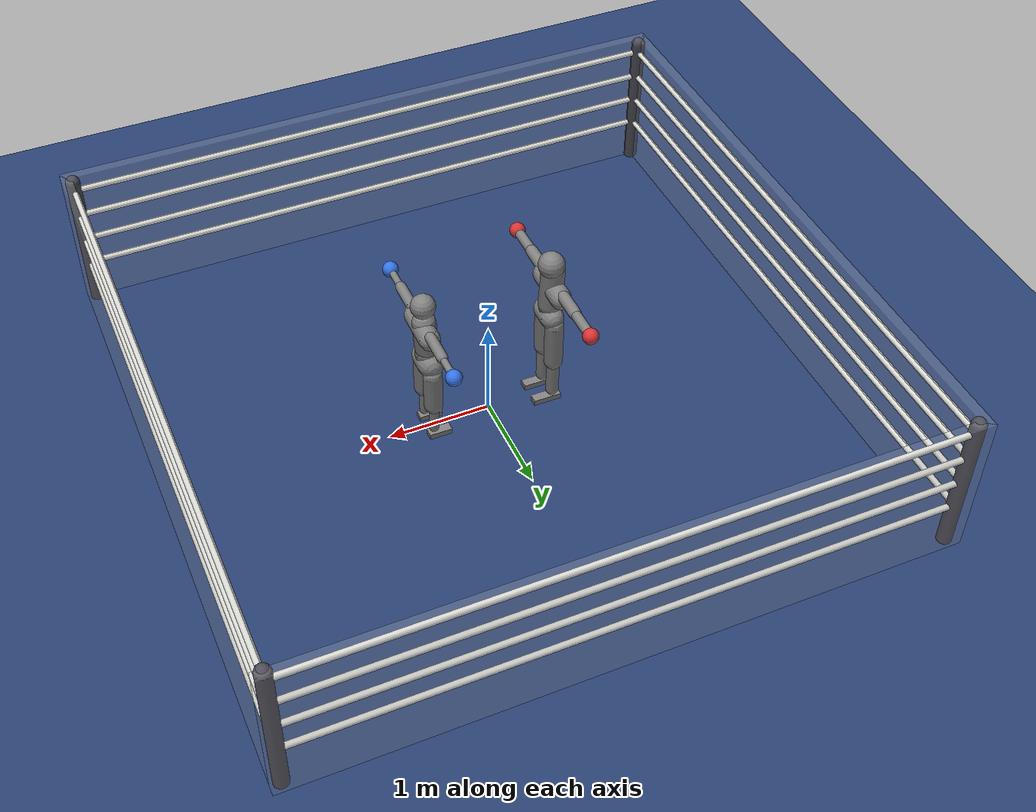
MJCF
<mujoco model="trump_vs_lilmatt_spar">
  <compiler angle="degree" inertiafromgeom="true" autolimits="true"/>
  <option timestep="0.005" iterations="10" ls_iterations="10" integrator="implicitfast">
    <flag eulerdamp="disable"/>
  </option>
  <default>
    <geom contype="1" conaffinity="1" condim="3" friction="1.0 0.005 0.0001" density="1000" margin="0"/>
    <joint limited="true"/>
    <position ctrllimited="true"/>
  </default>
  <asset>
    <texture name="grid" type="2d" builtin="checker" rgb1=".18 .28 .48" rgb2=".14 .22 .40" width="300" height="300"/>
    <material name="grid" texture="grid" texrepeat="6 6" reflectance="0"/>
  </asset>
  <worldbody>
    <light pos="0 0 5" dir="0 0 -1" directional="true"/>
    <geom name="floor" type="plane" contype="3" conaffinity="3" size="0 0 0.05" material="grid" friction="1.0 0.005 0.0001"/>
    <geom name="rope_n" type="box" pos="0.0000 3.1000 0.7500" size="3.1500 0.0500 0.7500" rgba="0.8 0.8 0.8 0.15"/>
    <geom name="rope_s" type="box" pos="0.0000 -3.1000 0.7500" size="3.1500 0.0500 0.7500" rgba="0.8 0.8 0.8 0.15"/>
    <geom name="rope_e" type="box" pos="3.1000 0.0000 0.7500" size="0.0500 3.1500 0.7500" rgba="0.8 0.8 0.8 0.15"/>
    <geom name="rope_w" type="box" pos="-3.1000 0.0000 0.7500" size="0.0500 3.1500 0.7500" rgba="0.8 0.8 0.8 0.15"/>
    <body name="a_pelvis" pos="-0.6000 0.0000 0.9982" quat="1.00000 0 0 0.00000">
      <freejoint name="a_root"/>
      <geom name="a_pelvis_geom" type="capsule" fromto="0.0000 -0.0700 0.0000 0.0000 0.0700 0.0000" size="0.1121" mass="9.6630" />
      <geom name="a_pelvis_up" type="capsule" fromto="0.0000 0.0000 0.0000 -0.0074 0.0000 0.0765" size="0.1009" mass="5.7156" />
      <body name="a_torso" pos="-0.0074 0.0000 0.0965">
        <joint name="a_abdomen_z" type="hinge" axis="0 0 1" range="-45 45" damping="0.5" armature="0.08" stiffness="0"/>
        <joint name="a_abdomen_y" type="hinge" axis="0 1 0" range="-60 30" damping="0.5" armature="0.08" stiffness="0"/>
        <joint name="a_abdomen_x" type="hinge" axis="1 0 0" range="-35 35" damping="0.5" armature="0.08" stiffness="0"/>
        <geom name="a_torso_geom" type="capsule" fromto="0.0000 0.0000 0.0200 -0.0223 0.0000 0.4131" size="0.1121" mass="38.4465" />
        <geom name="a_chest_geom" type="capsule" fromto="-0.0178 -0.1841 0.2257 -0.0178 0.1841 0.2257" size="0.1009" mass="0.5"/>
        <geom name="a_head_geom" type="sphere" pos="-0.0037 0.0000 0.4861" size="0.1250" mass="8.7723" />
        <body name="a_upper_arm_l" pos="-0.0223 0.2301 0.2821">
          <joint name="a_shoulder_x_l" type="hinge" axis="1 0 0" range="-170 30" damping="0.5" armature="0.03" stiffness="0"/>
          <joint name="a_shoulder_z_l" type="hinge" axis="0 0 1" range="-110 110" damping="0.5" armature="0.03" stiffness="0"/>
          <geom name="a_upper_arm_l_geom" type="capsule" fromto="0.0000 0.0000 0.0000 0.0000 0.2324 0.0000" size="0.0580" mass="3.0324" />
          <body name="a_forearm_l" pos="0.0000 0.2324 0.0000">
            <joint name="a_elbow_l" type="hinge" axis="0 0 1" range="-150 0" damping="0.5" armature="0.02" stiffness="0"/>
            <geom name="a_forearm_l_geom" type="capsule" fromto="0.0000 0.0000 0.0000 0.0000 0.2561 0.0000" size="0.0480" mass="1.7328" />
            <geom name="a_glove_l" type="sphere" pos="0.0000 0.3236 0.0000" size="0.0750" mass="0.9328" rgba="0.85 0.2 0.2 1"/>
          </body>
        </body>
        <body name="a_upper_arm_r" pos="-0.0223 -0.2301 0.2821">
          <joint name="a_shoulder_x_r" type="hinge" axis="1 0 0" range="-30 170" damping="0.5" armature="0.03" stiffness="0"/>
          <joint name="a_shoulder_z_r" type="hinge" axis="0 0 1" range="-110 110" damping="0.5" armature="0.03" stiffness="0"/>
          <geom name="a_upper_arm_r_geom" type="capsule" fromto="0.0000 0.0000 0.0000 0.0000 -0.2324 0.0000" size="0.0580" mass="3.0324" />
          <body name="a_forearm_r" pos="0.0000 -0.2324 0.0000">
            <joint name="a_elbow_r" type="hinge" axis="0 0 1" range="0 150" damping="0.5" armature="0.02" stiffness="0"/>
            <geom name="a_forearm_r_geom" type="capsule" fromto="0.0000 0.0000 0.0000 0.0000 -0.2561 0.0000" size="0.0480" mass="1.7328" />
            <geom name="a_glove_r" type="sphere" pos="0.0000 -0.3236 0.0000" size="0.0750" mass="0.9328" rgba="0.85 0.2 0.2 1"/>
          </body>
        </body>
      </body>
      <body name="a_thigh_l" pos="-0.0074 0.1113 -0.0593">
        <joint name="a_hip_x_l" type="hinge" axis="1 0 0" range="-40 40" damping="0.5" armature="0.1" stiffness="0"/>
        <joint name="a_hip_z_l" type="hinge" axis="0 0 1" range="-35 35" damping="0.5" armature="0.1" stiffness="0"/>
        <joint name="a_hip_y_l" type="hinge" axis="0 1 0" range="-120 30" damping="0.5" armature="0.1" stiffness="0"/>
        <geom name="a_thigh_l_geom" type="capsule" fromto="0.0000 0.0000 0.0000 0.0000 0.0000 -0.4454" size="0.0900" mass="10.8300" />
        <body name="a_shin_l" pos="0.0000 0.0000 -0.4454">
          <joint name="a_knee_l" type="hinge" axis="0 1 0" range="0 150" damping="0.5" armature="0.1" stiffness="0"/>
          <geom name="a_shin_l_geom" type="capsule" fromto="0.0000 0.0000 0.0000 0.0000 0.0000 -0.3790" size="0.0620" mass="5.0359" />
          <body name="a_foot_l" pos="0.0000 0.0000 -0.3790">
            <joint name="a_ankle_y_l" type="hinge" axis="0 1 0" range="-20 50" damping="0.5" armature="0.03" stiffness="0"/>
            <joint name="a_ankle_x_l" type="hinge" axis="1 0 0" range="-25 25" damping="0.5" armature="0.03" stiffness="0"/>
            <geom name="a_foot_l_geom" type="box" pos="0.0627 0.0000 -0.0870" size="0.1363 0.0450 0.0280" mass="1.5704" friction="1.0 0.005 0.0001"/>
            <site name="a_foot_l_site" pos="0.0627 0.0000 -0.0870" size="0.01"/>
          </body>
        </body>
      </body>
      <body name="a_thigh_r" pos="-0.0074 -0.1113 -0.0593">
        <joint name="a_hip_x_r" type="hinge" axis="1 0 0" range="-40 40" damping="0.5" armature="0.1" stiffness="0"/>
        <joint name="a_hip_z_r" type="hinge" axis="0 0 1" range="-35 35" damping="0.5" armature="0.1" stiffness="0"/>
        <joint name="a_hip_y_r" type="hinge" axis="0 1 0" range="-120 30" damping="0.5" armature="0.1" stiffness="0"/>
        <geom name="a_thigh_r_geom" type="capsule" fromto="0.0000 0.0000 0.0000 0.0000 0.0000 -0.4454" size="0.0900" mass="10.8300" />
        <body name="a_shin_r" pos="0.0000 0.0000 -0.4454">
          <joint name="a_knee_r" type="hinge" axis="0 1 0" range="0 150" damping="0.5" armature="0.1" stiffness="0"/>
          <geom name="a_shin_r_geom" type="capsule" fromto="0.0000 0.0000 0.0000 0.0000 0.0000 -0.3790" size="0.0620" mass="5.0359" />
          <body name="a_foot_r" pos="0.0000 0.0000 -0.3790">
            <joint name="a_ankle_y_r" type="hinge" axis="0 1 0" range="-20 50" damping="0.5" armature="0.03" stiffness="0"/>
            <joint name="a_ankle_x_r" type="hinge" axis="1 0 0" range="-25 25" damping="0.5" armature="0.03" stiffness="0"/>
            <geom name="a_foot_r_geom" type="box" pos="0.0627 0.0000 -0.0870" size="0.1363 0.0450 0.0280" mass="1.5704" friction="1.0 0.005 0.0001"/>
            <site name="a_foot_r_site" pos="0.0627 0.0000 -0.0870" size="0.01"/>
          </body>
        </body>
      </body>
    </body>
    <body name="b_pelvis" pos="0.6000 0.0000 0.8672" quat="0.00000 0 0 1.00000">
      <freejoint name="b_root"/>
      <geom name="b_pelvis_geom" type="capsule" fromto="0.0000 -0.0700 0.0000 0.0000 0.0700 0.0000" size="0.1228" mass="6.8132" />
      <geom name="b_pelvis_up" type="capsule" fromto="0.0000 0.0000 0.0000 -0.0066 0.0000 0.1058" size="0.1105" mass="4.6036" />
      <body name="b_torso" pos="-0.0066 0.0000 0.1258">
        <joint name="b_abdomen_z" type="hinge" axis="0 0 1" range="-45 45" damping="0.5" armature="0.08" stiffness="0"/>
        <joint name="b_abdomen_y" type="hinge" axis="0 1 0" range="-60 30" damping="0.5" armature="0.08" stiffness="0"/>
        <joint name="b_abdomen_x" type="hinge" axis="1 0 0" range="-35 35" damping="0.5" armature="0.08" stiffness="0"/>
        <geom name="b_torso_geom" type="capsule" fromto="0.0000 0.0000 0.0200 -0.0181 0.0000 0.3354" size="0.1100" mass="28.5420" />
        <geom name="b_chest_geom" type="capsule" fromto="-0.0347 -0.1786 0.2850 -0.0347 0.1786 0.2850" size="0.0990" mass="0.5"/>
        <geom name="b_head_geom" type="sphere" pos="-0.0217 0.0000 0.5289" size="0.1155" mass="6.5124" />
        <body name="b_upper_arm_l" pos="-0.0434 0.2232 0.3563">
          <joint name="b_shoulder_x_l" type="hinge" axis="1 0 0" range="-170 30" damping="0.5" armature="0.03" stiffness="0"/>
          <joint name="b_shoulder_z_l" type="hinge" axis="0 0 1" range="-110 110" damping="0.5" armature="0.03" stiffness="0"/>
          <geom name="b_upper_arm_l_geom" type="capsule" fromto="0.0000 0.0000 0.0000 0.0000 0.2758 0.0000" size="0.0508" mass="2.2512" />
          <body name="b_forearm_l" pos="0.0000 0.2758 0.0000">
            <joint name="b_elbow_l" type="hinge" axis="0 0 1" range="-150 0" damping="0.5" armature="0.02" stiffness="0"/>
            <geom name="b_forearm_l_geom" type="capsule" fromto="0.0000 0.0000 0.0000 0.0000 0.1970 0.0000" size="0.0332" mass="1.2864" />
            <geom name="b_glove_l" type="sphere" pos="0.0000 0.2645 0.0000" size="0.0750" mass="0.7654" rgba="0.2 0.45 0.9 1"/>
          </body>
        </body>
        <body name="b_upper_arm_r" pos="-0.0434 -0.2232 0.3563">
          <joint name="b_shoulder_x_r" type="hinge" axis="1 0 0" range="-30 170" damping="0.5" armature="0.03" stiffness="0"/>
          <joint name="b_shoulder_z_r" type="hinge" axis="0 0 1" range="-110 110" damping="0.5" armature="0.03" stiffness="0"/>
          <geom name="b_upper_arm_r_geom" type="capsule" fromto="0.0000 0.0000 0.0000 0.0000 -0.2758 0.0000" size="0.0508" mass="2.2512" />
          <body name="b_forearm_r" pos="0.0000 -0.2758 0.0000">
            <joint name="b_elbow_r" type="hinge" axis="0 0 1" range="0 150" damping="0.5" armature="0.02" stiffness="0"/>
            <geom name="b_forearm_r_geom" type="capsule" fromto="0.0000 0.0000 0.0000 0.0000 -0.1970 0.0000" size="0.0332" mass="1.2864" />
            <geom name="b_glove_r" type="sphere" pos="0.0000 -0.2645 0.0000" size="0.0750" mass="0.7654" rgba="0.2 0.45 0.9 1"/>
          </body>
        </body>
      </body>
      <body name="b_thigh_l" pos="-0.0061 0.1244 -0.0919">
        <joint name="b_hip_x_l" type="hinge" axis="1 0 0" range="-40 40" damping="0.5" armature="0.1" stiffness="0"/>
        <joint name="b_hip_z_l" type="hinge" axis="0 0 1" range="-35 35" damping="0.5" armature="0.1" stiffness="0"/>
        <joint name="b_hip_y_l" type="hinge" axis="0 1 0" range="-120 30" damping="0.5" armature="0.1" stiffness="0"/>
        <geom name="b_thigh_l_geom" type="capsule" fromto="0.0000 0.0000 0.0000 0.0000 0.0000 -0.3718" size="0.0895" mass="8.0400" />
        <body name="b_shin_l" pos="0.0000 0.0000 -0.3718">
          <joint name="b_knee_l" type="hinge" axis="0 1 0" range="0 150" damping="0.5" armature="0.1" stiffness="0"/>
          <geom name="b_shin_l_geom" type="capsule" fromto="0.0000 0.0000 0.0000 0.0000 0.0000 -0.3036" size="0.0462" mass="3.7386" />
          <body name="b_foot_l" pos="0.0000 0.0000 -0.3036">
            <joint name="b_ankle_y_l" type="hinge" axis="0 1 0" range="-20 50" damping="0.5" armature="0.03" stiffness="0"/>
            <joint name="b_ankle_x_l" type="hinge" axis="1 0 0" range="-25 25" damping="0.5" armature="0.03" stiffness="0"/>
            <geom name="b_foot_l_geom" type="box" pos="0.0506 0.0000 -0.0797" size="0.1100 0.0450 0.0280" mass="1.1658" friction="1.0 0.005 0.0001"/>
            <site name="b_foot_l_site" pos="0.0506 0.0000 -0.0797" size="0.01"/>
          </body>
        </body>
      </body>
      <body name="b_thigh_r" pos="-0.0061 -0.1244 -0.0919">
        <joint name="b_hip_x_r" type="hinge" axis="1 0 0" range="-40 40" damping="0.5" armature="0.1" stiffness="0"/>
        <joint name="b_hip_z_r" type="hinge" axis="0 0 1" range="-35 35" damping="0.5" armature="0.1" stiffness="0"/>
        <joint name="b_hip_y_r" type="hinge" axis="0 1 0" range="-120 30" damping="0.5" armature="0.1" stiffness="0"/>
        <geom name="b_thigh_r_geom" type="capsule" fromto="0.0000 0.0000 0.0000 0.0000 0.0000 -0.3718" size="0.0895" mass="8.0400" />
        <body name="b_shin_r" pos="0.0000 0.0000 -0.3718">
          <joint name="b_knee_r" type="hinge" axis="0 1 0" range="0 150" damping="0.5" armature="0.1" stiffness="0"/>
          <geom name="b_shin_r_geom" type="capsule" fromto="0.0000 0.0000 0.0000 0.0000 0.0000 -0.3036" size="0.0462" mass="3.7386" />
          <body name="b_foot_r" pos="0.0000 0.0000 -0.3036">
            <joint name="b_ankle_y_r" type="hinge" axis="0 1 0" range="-20 50" damping="0.5" armature="0.03" stiffness="0"/>
            <joint name="b_ankle_x_r" type="hinge" axis="1 0 0" range="-25 25" damping="0.5" armature="0.03" stiffness="0"/>
            <geom name="b_foot_r_geom" type="box" pos="0.0506 0.0000 -0.0797" size="0.1100 0.0450 0.0280" mass="1.1658" friction="1.0 0.005 0.0001"/>
            <site name="b_foot_r_site" pos="0.0506 0.0000 -0.0797" size="0.01"/>
          </body>
        </body>
      </body>
    </body>
      <geom name="rope_n_0" type="capsule" fromto="-3.05 3.05 0.45 3.05 3.05 0.45" size="0.03" solref="0.2 1" contype="3" conaffinity="3" rgba="0.86 0.86 0.84 1"/>
    <geom name="rope_s_0" type="capsule" fromto="-3.05 -3.05 0.45 3.05 -3.05 0.45" size="0.03" solref="0.2 1" contype="3" conaffinity="3" rgba="0.86 0.86 0.84 1"/>
    <geom name="rope_e_0" type="capsule" fromto="3.05 -3.05 0.45 3.05 3.05 0.45" size="0.03" solref="0.2 1" contype="3" conaffinity="3" rgba="0.86 0.86 0.84 1"/>
    <geom name="rope_w_0" type="capsule" fromto="-3.05 -3.05 0.45 -3.05 3.05 0.45" size="0.03" solref="0.2 1" contype="3" conaffinity="3" rgba="0.86 0.86 0.84 1"/>
    <geom name="rope_n_1" type="capsule" fromto="-3.05 3.05 0.75 3.05 3.05 0.75" size="0.03" solref="0.2 1" contype="3" conaffinity="3" rgba="0.86 0.86 0.84 1"/>
    <geom name="rope_s_1" type="capsule" fromto="-3.05 -3.05 0.75 3.05 -3.05 0.75" size="0.03" solref="0.2 1" contype="3" conaffinity="3" rgba="0.86 0.86 0.84 1"/>
    <geom name="rope_e_1" type="capsule" fromto="3.05 -3.05 0.75 3.05 3.05 0.75" size="0.03" solref="0.2 1" contype="3" conaffinity="3" rgba="0.86 0.86 0.84 1"/>
    <geom name="rope_w_1" type="capsule" fromto="-3.05 -3.05 0.75 -3.05 3.05 0.75" size="0.03" solref="0.2 1" contype="3" conaffinity="3" rgba="0.86 0.86 0.84 1"/>
    <geom name="rope_n_2" type="capsule" fromto="-3.05 3.05 1.05 3.05 3.05 1.05" size="0.03" solref="0.2 1" contype="3" conaffinity="3" rgba="0.86 0.86 0.84 1"/>
    <geom name="rope_s_2" type="capsule" fromto="-3.05 -3.05 1.05 3.05 -3.05 1.05" size="0.03" solref="0.2 1" contype="3" conaffinity="3" rgba="0.86 0.86 0.84 1"/>
    <geom name="rope_e_2" type="capsule" fromto="3.05 -3.05 1.05 3.05 3.05 1.05" size="0.03" solref="0.2 1" contype="3" conaffinity="3" rgba="0.86 0.86 0.84 1"/>
    <geom name="rope_w_2" type="capsule" fromto="-3.05 -3.05 1.05 -3.05 3.05 1.05" size="0.03" solref="0.2 1" contype="3" conaffinity="3" rgba="0.86 0.86 0.84 1"/>
    <geom name="rope_n_3" type="capsule" fromto="-3.05 3.05 1.35 3.05 3.05 1.35" size="0.03" solref="0.2 1" contype="3" conaffinity="3" rgba="0.86 0.86 0.84 1"/>
    <geom name="rope_s_3" type="capsule" fromto="-3.05 -3.05 1.35 3.05 -3.05 1.35" size="0.03" solref="0.2 1" contype="3" conaffinity="3" rgba="0.86 0.86 0.84 1"/>
    <geom name="rope_e_3" type="capsule" fromto="3.05 -3.05 1.35 3.05 3.05 1.35" size="0.03" solref="0.2 1" contype="3" conaffinity="3" rgba="0.86 0.86 0.84 1"/>
    <geom name="rope_w_3" type="capsule" fromto="-3.05 -3.05 1.35 -3.05 3.05 1.35" size="0.03" solref="0.2 1" contype="3" conaffinity="3" rgba="0.86 0.86 0.84 1"/>
    <geom name="post_ne" type="capsule" fromto="3.05 3.05 0 3.05 3.05 1.45" size="0.07" contype="3" conaffinity="3" rgba="0.3 0.3 0.35 1"/>
    <geom name="post_nw" type="capsule" fromto="-3.05 3.05 0 -3.05 3.05 1.45" size="0.07" contype="3" conaffinity="3" rgba="0.3 0.3 0.35 1"/>
    <geom name="post_se" type="capsule" fromto="3.05 -3.05 0 3.05 -3.05 1.45" size="0.07" contype="3" conaffinity="3" rgba="0.3 0.3 0.35 1"/>
    <geom name="post_sw" type="capsule" fromto="-3.05 -3.05 0 -3.05 -3.05 1.45" size="0.07" contype="3" conaffinity="3" rgba="0.3 0.3 0.35 1"/>
  </worldbody>
  <contact>
    <exclude body1="a_pelvis" body2="a_torso"/>
    <exclude body1="a_pelvis" body2="a_thigh_l"/>
    <exclude body1="a_thigh_l" body2="a_shin_l"/>
    <exclude body1="a_shin_l" body2="a_foot_l"/>
    <exclude body1="a_torso" body2="a_upper_arm_l"/>
    <exclude body1="a_upper_arm_l" body2="a_forearm_l"/>
    <exclude body1="a_pelvis" body2="a_thigh_r"/>
    <exclude body1="a_thigh_r" body2="a_shin_r"/>
    <exclude body1="a_shin_r" body2="a_foot_r"/>
    <exclude body1="a_torso" body2="a_upper_arm_r"/>
    <exclude body1="a_upper_arm_r" body2="a_forearm_r"/>
    <exclude body1="b_pelvis" body2="b_torso"/>
    <exclude body1="b_pelvis" body2="b_thigh_l"/>
    <exclude body1="b_thigh_l" body2="b_shin_l"/>
    <exclude body1="b_shin_l" body2="b_foot_l"/>
    <exclude body1="b_torso" body2="b_upper_arm_l"/>
    <exclude body1="b_upper_arm_l" body2="b_forearm_l"/>
    <exclude body1="b_pelvis" body2="b_thigh_r"/>
    <exclude body1="b_thigh_r" body2="b_shin_r"/>
    <exclude body1="b_shin_r" body2="b_foot_r"/>
    <exclude body1="b_torso" body2="b_upper_arm_r"/>
    <exclude body1="b_upper_arm_r" body2="b_forearm_r"/>
  </contact>
  <actuator>
    <position name="a_abdomen_z" joint="a_abdomen_z" kp="495.9" kv="23.142" forcerange="-187.34 187.34" ctrlrange="-0.7854 0.7854"/>
    <position name="a_abdomen_y" joint="a_abdomen_y" kp="495.9" kv="23.142" forcerange="-187.34 187.34" ctrlrange="-1.0472 0.5236"/>
    <position name="a_abdomen_x" joint="a_abdomen_x" kp="495.9" kv="23.142" forcerange="-187.34 187.34" ctrlrange="-0.6109 0.6109"/>
    <position name="a_shoulder_x_l" joint="a_shoulder_x_l" kp="176.32" kv="8.816" forcerange="-110.2 110.2" ctrlrange="-2.9671 0.5236"/>
    <position name="a_shoulder_z_l" joint="a_shoulder_z_l" kp="176.32" kv="8.816" forcerange="-110.2 110.2" ctrlrange="-1.9199 1.9199"/>
    <position name="a_elbow_l" joint="a_elbow_l" kp="121.22" kv="6.061" forcerange="-77.14 77.14" ctrlrange="-2.6180 0.0000"/>
    <position name="a_shoulder_x_r" joint="a_shoulder_x_r" kp="176.32" kv="8.816" forcerange="-110.2 110.2" ctrlrange="-0.5236 2.9671"/>
    <position name="a_shoulder_z_r" joint="a_shoulder_z_r" kp="176.32" kv="8.816" forcerange="-110.2 110.2" ctrlrange="-1.9199 1.9199"/>
    <position name="a_elbow_r" joint="a_elbow_r" kp="121.22" kv="6.061" forcerange="-77.14 77.14" ctrlrange="0.0000 2.6180"/>
    <position name="a_hip_x_l" joint="a_hip_x_l" kp="661.2" kv="33.06" forcerange="-264.48 264.48" ctrlrange="-0.6981 0.6981"/>
    <position name="a_hip_z_l" joint="a_hip_z_l" kp="661.2" kv="33.06" forcerange="-264.48 264.48" ctrlrange="-0.6109 0.6109"/>
    <position name="a_hip_y_l" joint="a_hip_y_l" kp="661.2" kv="33.06" forcerange="-264.48 264.48" ctrlrange="-2.0944 0.5236"/>
    <position name="a_knee_l" joint="a_knee_l" kp="661.2" kv="33.06" forcerange="-286.52 286.52" ctrlrange="0.0000 2.6180"/>
    <position name="a_ankle_y_l" joint="a_ankle_y_l" kp="826.5" kv="33.06" forcerange="-242.44 242.44" ctrlrange="-0.3491 0.8727"/>
    <position name="a_ankle_x_l" joint="a_ankle_x_l" kp="88.16" kv="4.408" forcerange="-66.12 66.12" ctrlrange="-0.4363 0.4363"/>
    <position name="a_hip_x_r" joint="a_hip_x_r" kp="661.2" kv="33.06" forcerange="-264.48 264.48" ctrlrange="-0.6981 0.6981"/>
    <position name="a_hip_z_r" joint="a_hip_z_r" kp="661.2" kv="33.06" forcerange="-264.48 264.48" ctrlrange="-0.6109 0.6109"/>
    <position name="a_hip_y_r" joint="a_hip_y_r" kp="661.2" kv="33.06" forcerange="-264.48 264.48" ctrlrange="-2.0944 0.5236"/>
    <position name="a_knee_r" joint="a_knee_r" kp="661.2" kv="33.06" forcerange="-286.52 286.52" ctrlrange="0.0000 2.6180"/>
    <position name="a_ankle_y_r" joint="a_ankle_y_r" kp="826.5" kv="33.06" forcerange="-242.44 242.44" ctrlrange="-0.3491 0.8727"/>
    <position name="a_ankle_x_r" joint="a_ankle_x_r" kp="88.16" kv="4.408" forcerange="-66.12 66.12" ctrlrange="-0.4363 0.4363"/>
    <position name="b_abdomen_z" joint="b_abdomen_z" kp="368.1" kv="17.178" forcerange="-139.06 139.06" ctrlrange="-0.7854 0.7854"/>
    <position name="b_abdomen_y" joint="b_abdomen_y" kp="368.1" kv="17.178" forcerange="-139.06 139.06" ctrlrange="-1.0472 0.5236"/>
    <position name="b_abdomen_x" joint="b_abdomen_x" kp="368.1" kv="17.178" forcerange="-139.06 139.06" ctrlrange="-0.6109 0.6109"/>
    <position name="b_shoulder_x_l" joint="b_shoulder_x_l" kp="130.88" kv="6.544" forcerange="-81.8 81.8" ctrlrange="-2.9671 0.5236"/>
    <position name="b_shoulder_z_l" joint="b_shoulder_z_l" kp="130.88" kv="6.544" forcerange="-81.8 81.8" ctrlrange="-1.9199 1.9199"/>
    <position name="b_elbow_l" joint="b_elbow_l" kp="89.98" kv="4.499" forcerange="-57.26 57.26" ctrlrange="-2.6180 0.0000"/>
    <position name="b_shoulder_x_r" joint="b_shoulder_x_r" kp="130.88" kv="6.544" forcerange="-81.8 81.8" ctrlrange="-0.5236 2.9671"/>
    <position name="b_shoulder_z_r" joint="b_shoulder_z_r" kp="130.88" kv="6.544" forcerange="-81.8 81.8" ctrlrange="-1.9199 1.9199"/>
    <position name="b_elbow_r" joint="b_elbow_r" kp="89.98" kv="4.499" forcerange="-57.26 57.26" ctrlrange="0.0000 2.6180"/>
    <position name="b_hip_x_l" joint="b_hip_x_l" kp="490.8" kv="24.54" forcerange="-196.32 196.32" ctrlrange="-0.6981 0.6981"/>
    <position name="b_hip_z_l" joint="b_hip_z_l" kp="490.8" kv="24.54" forcerange="-196.32 196.32" ctrlrange="-0.6109 0.6109"/>
    <position name="b_hip_y_l" joint="b_hip_y_l" kp="490.8" kv="24.54" forcerange="-196.32 196.32" ctrlrange="-2.0944 0.5236"/>
    <position name="b_knee_l" joint="b_knee_l" kp="490.8" kv="24.54" forcerange="-212.68 212.68" ctrlrange="0.0000 2.6180"/>
    <position name="b_ankle_y_l" joint="b_ankle_y_l" kp="613.5" kv="24.54" forcerange="-179.96 179.96" ctrlrange="-0.3491 0.8727"/>
    <position name="b_ankle_x_l" joint="b_ankle_x_l" kp="65.44" kv="3.272" forcerange="-49.08 49.08" ctrlrange="-0.4363 0.4363"/>
    <position name="b_hip_x_r" joint="b_hip_x_r" kp="490.8" kv="24.54" forcerange="-196.32 196.32" ctrlrange="-0.6981 0.6981"/>
    <position name="b_hip_z_r" joint="b_hip_z_r" kp="490.8" kv="24.54" forcerange="-196.32 196.32" ctrlrange="-0.6109 0.6109"/>
    <position name="b_hip_y_r" joint="b_hip_y_r" kp="490.8" kv="24.54" forcerange="-196.32 196.32" ctrlrange="-2.0944 0.5236"/>
    <position name="b_knee_r" joint="b_knee_r" kp="490.8" kv="24.54" forcerange="-212.68 212.68" ctrlrange="0.0000 2.6180"/>
    <position name="b_ankle_y_r" joint="b_ankle_y_r" kp="613.5" kv="24.54" forcerange="-179.96 179.96" ctrlrange="-0.3491 0.8727"/>
    <position name="b_ankle_x_r" joint="b_ankle_x_r" kp="65.44" kv="3.272" forcerange="-49.08 49.08" ctrlrange="-0.4363 0.4363"/>
  </actuator>
  <keyframe>
    <key name="stand" qpos="-0.6000 0.0000 0.9790 1.00000 0 0 0.00000 0.0000 0.0000 0.0000 -1.3265 -0.7330 -1.9548 1.3265 0.7330 1.9548 0.0000 0.0000 -0.1656 0.4538 -0.2882 0.0000 0.0000 0.0000 -0.1656 0.4538 -0.2882 0.0000 0.6000 0.0000 0.8593 0.00000 0 0 1.00000 0.0000 0.0000 0.0000 -1.3265 -0.7330 -1.9548 1.3265 0.7330 1.9548 0.0000 0.0000 -0.1621 0.4538 -0.2916 0.0000 0.0000 0.0000 -0.1621 0.4538 -0.2916 0.0000"/>
  </keyframe>
</mujoco>
